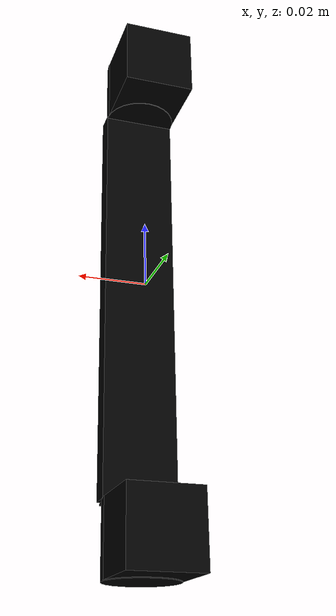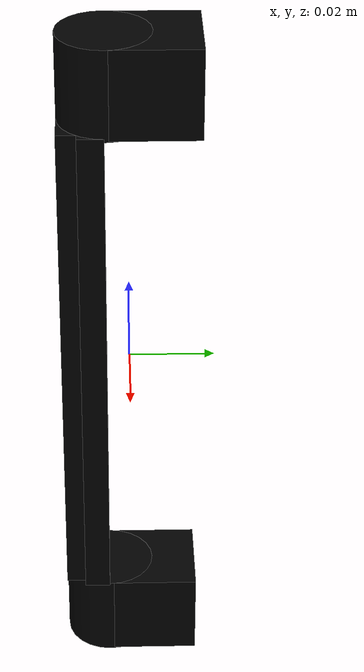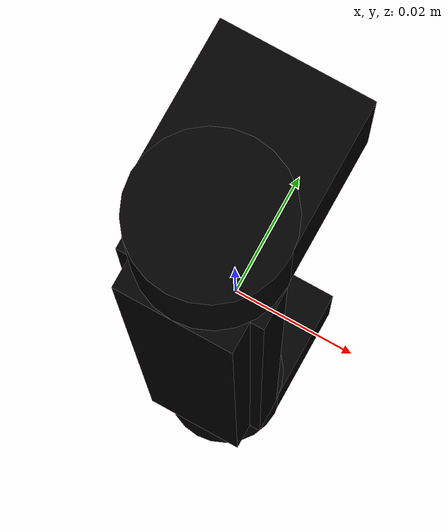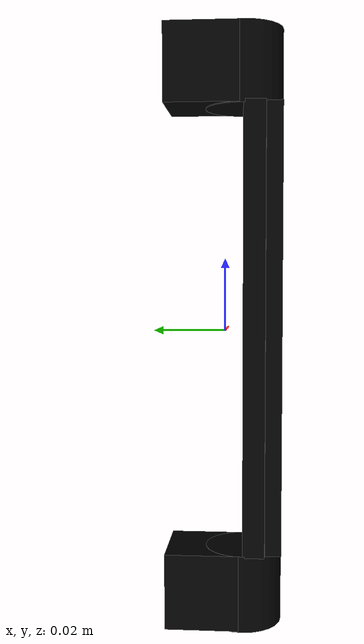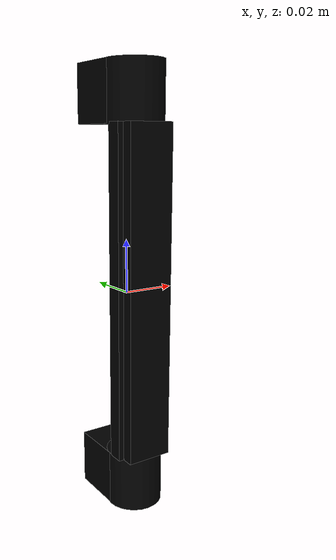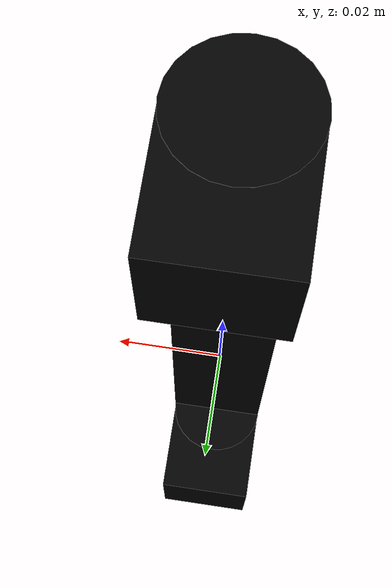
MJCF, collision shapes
<?xml version="1.0" ?>
<mujoco model="model">
    <compiler angle="radian"/>
    <asset>
        <mesh file="visuals/CabinetHandle010.obj" name="mesh"/>
        <texture file="visuals/T_BC001.png" name="tex" type="2d"/>
        <material name="mat" rgba="1 1 1 1.0" texture="tex" shininess="2" specular="1"/>
    </asset>
    <default>
        <default class="visual">
            <geom conaffinity="0" contype="0" group="1" type="mesh"/>
        </default>
        <default class="collision">
            <geom group="0" rgba="0 0 0 0"/>
        </default>
        <default class="spawn">
            <geom group="0" rgba="0 0 0 0" contype="0" conaffinity="0"/>
            <site group="0" rgba="0 0 0 0"/>
        </default>
    </default>
    <worldbody>
        <body>
            <body name="object">
                <geom mesh="mesh" type="mesh" solimp="0.998 0.998 0.001" solref="0.001 1" density="100" friction="0.95 0.3 0.1" class="visual" material="mat"/>
                <geom class="collision" type="cylinder" pos="0.0 -0.005160082131624222 0.07152626663446426" size="0.010653411969542503 0.010653411969542503" quat="1.0 0.0 0.0 0.0"/>
                <geom class="collision" type="cylinder" pos="0.0 -0.005160082131624222 -0.0717424750328064" size="0.010653411969542503 0.010653411969542503" quat="1.0 0.0 0.0 0.0"/>
                <geom class="collision" type="box" pos="-1.5903632537295627e-17 0.005621281918138266 0.07162359356880188" size="0.010529065504670143 0.010529065504670143 0.010529065504670143" quat="1.0 0.0 0.0 0.0" name="handle_connector"/>
                <geom class="collision" type="box" pos="-1.5903632537295627e-17 0.005621281918138266 -0.07162664830684662" size="0.010529065504670143 0.010529065504670143 0.010529065504670143" quat="1.0 0.0 0.0 0.0"/>
                <geom class="collision" type="box" pos="5.780190622317605e-05 -0.008265664801001549 0.00010503455996513367" size="0.010635427199304104 0.003022677032276988 0.06161217391490936" quat="1.0 0.0 0.0 0.0"/>
                <geom class="collision" type="box" pos="5.780190622317605e-05 -0.013515489175915718 0.00010503455996513367" size="0.008648472838103771 0.0023121268022805452 0.06161217391490936" quat="1.0 0.0 0.0 0.0"/>
            </body>
        </body>
    </worldbody>
    <actuator/>
</mujoco>
